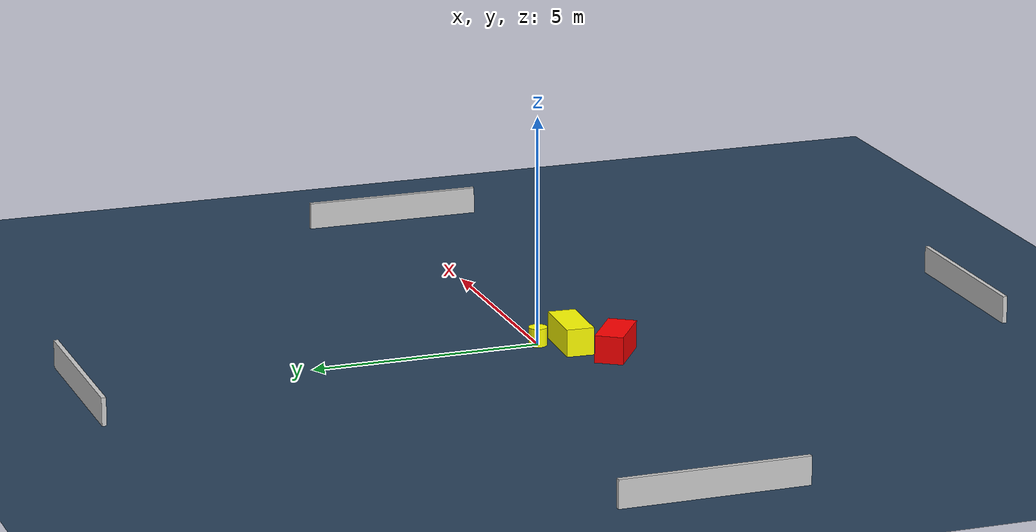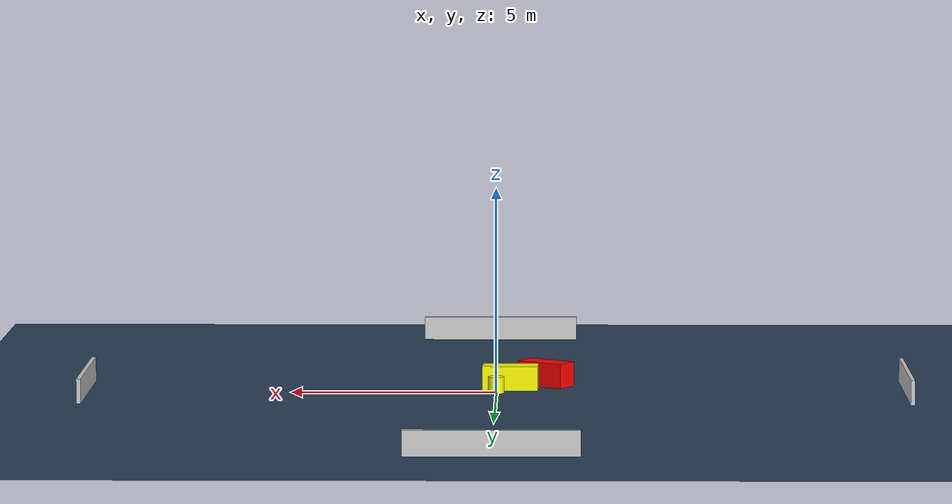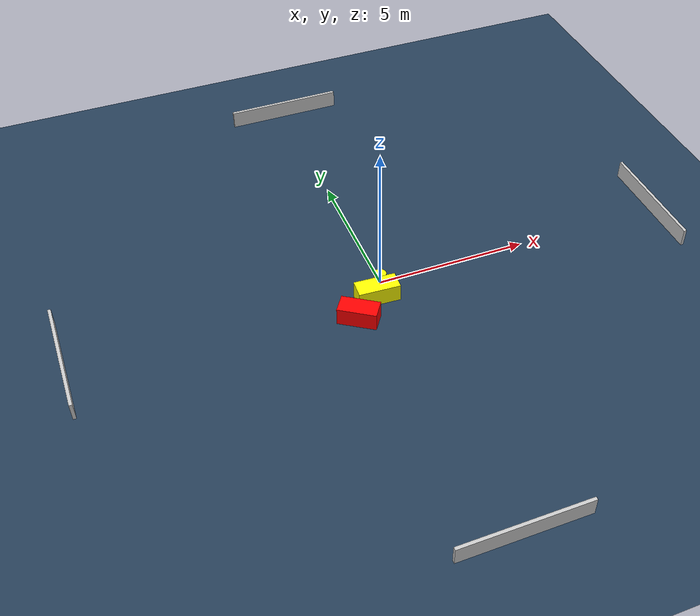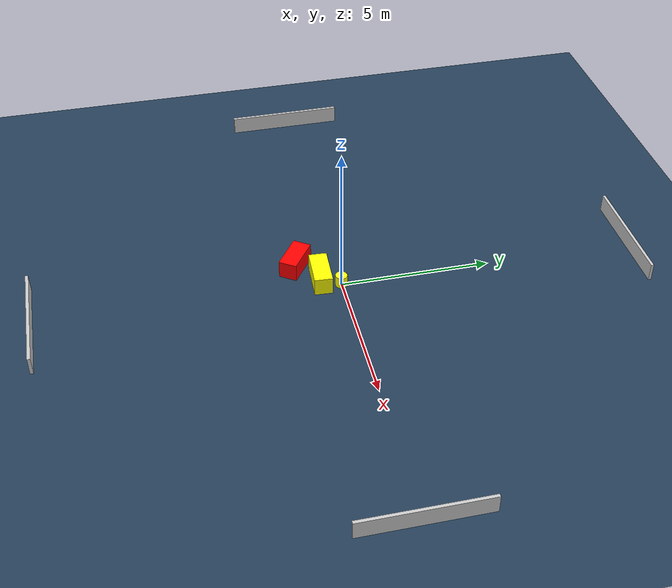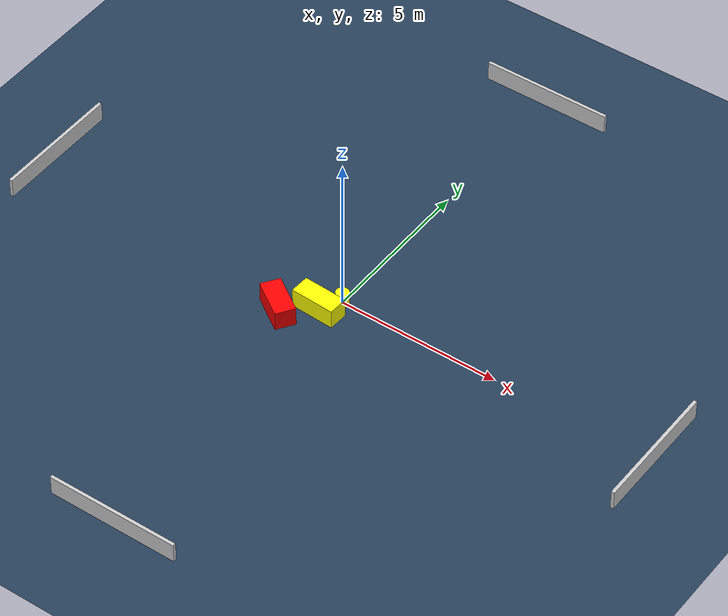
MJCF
<?xml version="1.0" ?>
<mujoco model="generated_environment">
  <option timestep="0.01" integrator="RK4" cone="elliptic"/>
  <default>
    <geom density="1"/>
  </default>
  <asset>
    <texture builtin="gradient" height="3072" name="skybox" rgb1="0.3 0.5 0.7" rgb2="0 0 0" type="skybox" width="512"/>
    <texture builtin="checker" height="300" name="groundplane" rgb1="0.2 0.3 0.4" rgb2="0.1 0.2 0.3" type="2d" width="300"/>
    <material name="groundplane" reflectance="0.2" texrepeat="5 5" texture="groundplane"/>
  </asset>
  <worldbody>
    <light dir="0 0 -1" directional="true" pos="0 0 1.5"/>
    <geom condim="3" friction="0.5 0.005 0.001" material="groundplane" name="floor" pos="0 0 0" size="0 0 0.05" type="plane"/>
    <body name="walls">
      <geom name="wall_1" condim="4" pos="-10.0 0.0 0.3" rgba="0.800000011920929 0.800000011920929 0.800000011920929 1.0" size="0.05 2.0 0.3" type="box"/>
      <geom name="wall_2" condim="4" pos="10.0 0.0 0.3" rgba="0.800000011920929 0.800000011920929 0.800000011920929 1.0" size="0.05 2.0 0.3" type="box"/>
      <geom name="wall_3" condim="4" pos="0.0 -10.0 0.3" rgba="0.800000011920929 0.800000011920929 0.800000011920929 1.0" size="2.0 0.05 0.3" type="box"/>
      <geom name="wall_4" condim="4" pos="0.0 10.0 0.3" rgba="0.800000011920929 0.800000011920929 0.800000011920929 1.0" size="2.0 0.05 0.3" type="box"/>
    </body>
    <body name="robot">
      <joint name="joint_x" type="slide" pos="0 0 0" axis="1 0 0"/>
      <joint name="joint_y" type="slide" pos="0 0 0" axis="0 1 0"/>
      <geom name="robot" type="cylinder" pos="0.0 0.0 0.2" size="0.2 0.2 0.0" mass="5.0" friction="1.0 0.005 0.0001" condim="4" rgba="1.0 1.0 0.0 1.0"/>
    </body>
    <body name="obstacle_1_movable">
      <geom name="obstacle_1_movable" condim="4" pos="-0.34405875426634774 -0.6211071514338534 0.3" euler="0 0 356.99228520366887" friction="0.0 0.005 0.001" rgba="1.0 1.0 0.0 1.0" size="0.6782294820656523 0.3015592644877543 0.3" type="box" mass="0.1"/>
      <joint type="free"/>
    </body>
    <body name="obstacle_2_static">
      <geom name="obstacle_2_static" condim="4" pos="-1.2147417594916883 -1.3069207770580904 0.3" euler="0 0 235.86163947339637" friction="0.0 0.005 0.001" rgba="1.0 0.0 0.0 1.0" size="0.30832353335483126 0.6228465011615825 0.3" type="box"/>
    </body>
  </worldbody>
  <actuator>
    <motor name="actuator_x" joint="joint_x" gear="1" ctrlrange="-1 1"/>
    <motor name="actuator_y" joint="joint_y" gear="1" ctrlrange="-1 1"/>
  </actuator>
</mujoco>
